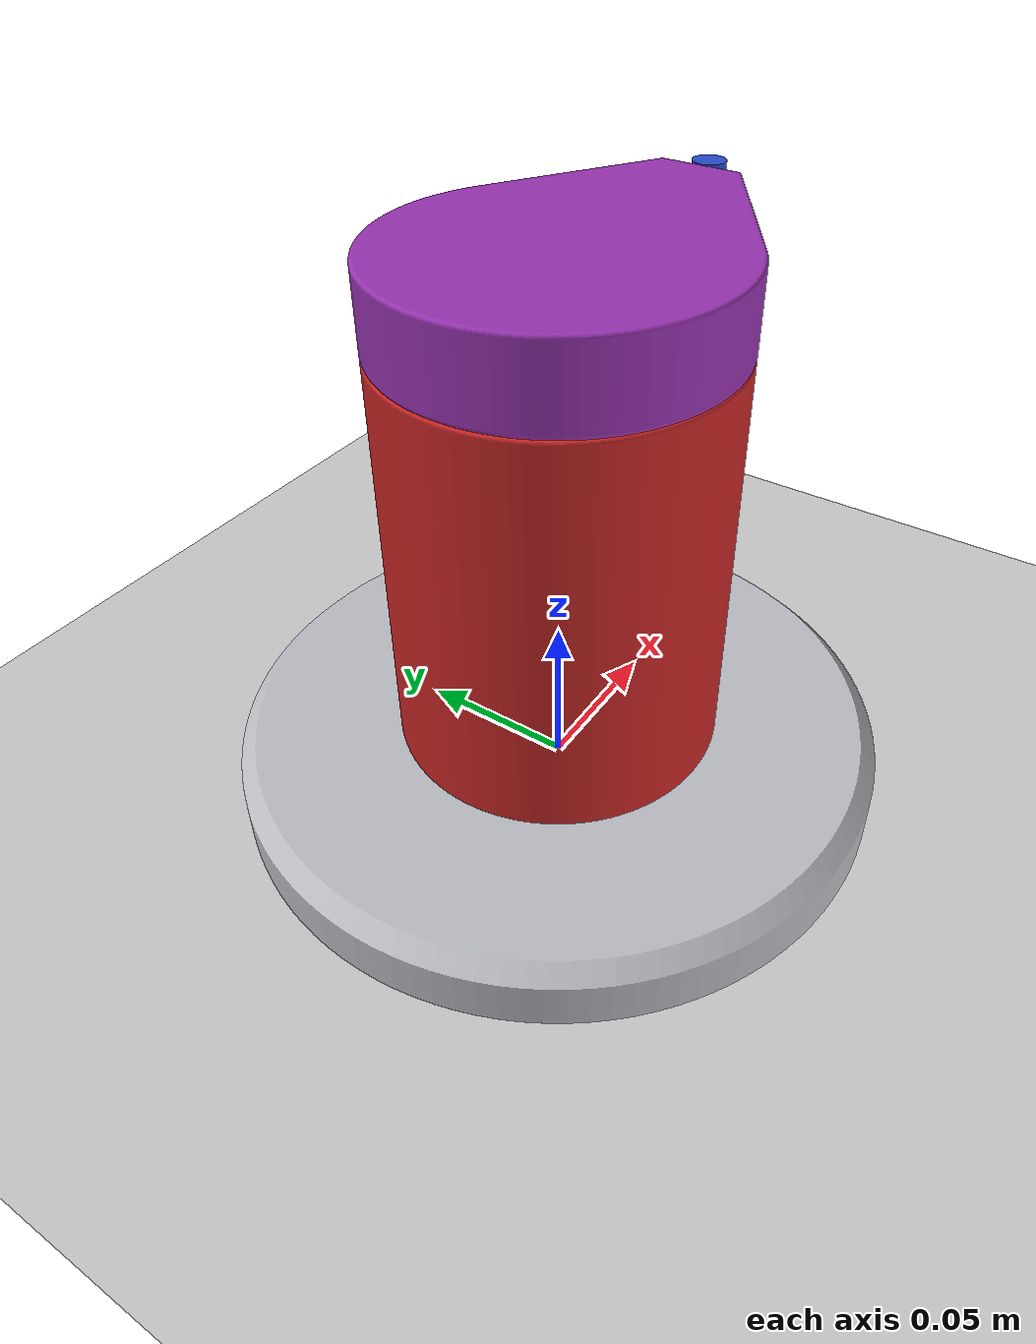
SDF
<sdf version="1.7">
 <world name="default">
  <light name="sun" type="directional">
   <pose>0 0 10 0 -0 0</pose>
   <diffuse>0.8 0.8 0.8 1</diffuse>
   <specular>0.2 0.2 0.2 1</specular>
   <attenuation>
    <range>1000</range>
    <constant>0.9</constant>
    <linear>0.01</linear>
    <quadratic>0.001</quadratic>
   </attenuation>
   <direction>-0.5 0.1 -0.9</direction>
   <spot><inner_angle>0</inner_angle><outer_angle>0</outer_angle><falloff>0</falloff></spot>
  </light>
  <model name="ground_plane">
   <static>1</static>
   <link name="link">
    <collision name="collision">
     <geometry><plane><normal>0 0 1</normal><size>100 100</size></plane></geometry>
     <surface><friction><ode><mu>100</mu><mu2>50</mu2></ode></friction></surface>
    </collision>
    <visual name="visual">
     <cast_shadows>0</cast_shadows>
     <geometry><plane><normal>0 0 1</normal><size>100 100</size></plane></geometry>
     <material>
      <script><uri>file://media/materials/scripts/gazebo.material</uri><name>Gazebo/Grey</name></script>
     </material>
    </visual>
   </link>
  </model>
  <gravity>0 0 -9.8</gravity>
  <magnetic_field>6e-06 2.3e-05 -4.2e-05</magnetic_field>
  <atmosphere type="adiabatic"/>
  <physics type="ode">
   <max_step_size>0.001</max_step_size>
   <real_time_factor>1</real_time_factor>
   <real_time_update_rate>1000</real_time_update_rate>
  </physics>
  <scene><ambient>0.4 0.4 0.4 1</ambient><background>0.7 0.7 0.7 1</background><shadows>1</shadows></scene>
  <audio><device>default</device></audio>
  <spherical_coordinates>
   <surface_model>EARTH_WGS84</surface_model>
   <latitude_deg>0</latitude_deg>
   <longitude_deg>0</longitude_deg>
   <elevation>0</elevation>
   <heading_deg>0</heading_deg>
  </spherical_coordinates>
  <model name="fura2a">
   <link name="base_link">
    <inertial>
     <pose>0 0 0.054376 0 -0 0</pose>
     <mass>12.5779</mass>
     <inertia>
      <ixx>0.0427787</ixx>
      <ixy>0</ixy>
      <ixz>-2.62711e-17</ixz>
      <iyy>0.0427787</iyy>
      <iyz>0</iyz>
      <izz>0.033707</izz>
     </inertia>
    </inertial>
    <collision name="base_link_collision">
     <geometry>
      <mesh>
       <scale>0.001 0.001 0.001</scale>
       <uri>file:///home/the-hassan-shahzad/ros2_ws/install/fura2a/share/fura2a/meshes/base_link.stl</uri>
      </mesh>
     </geometry>
     <surface><friction><ode><mu>0.95</mu><mu2>0.95</mu2></ode></friction></surface>
    </collision>
    <collision name="base_link_fixed_joint_lump__column_collision_1">
     <geometry>
      <mesh>
       <scale>0.001 0.001 0.001</scale>
       <uri>file:///home/the-hassan-shahzad/ros2_ws/install/fura2a/share/fura2a/meshes/column.stl</uri>
      </mesh>
     </geometry>
     <surface><friction><ode><mu>0.1</mu><mu2>0.1</mu2></ode></friction></surface>
    </collision>
    <visual name="base_link_visual">
     <geometry>
      <mesh>
       <scale>0.001 0.001 0.001</scale>
       <uri>file:///home/the-hassan-shahzad/ros2_ws/install/fura2a/share/fura2a/meshes/base_link.stl</uri>
      </mesh>
     </geometry>
     <material>
      <script><name>Gazebo/Silver</name><uri>file://media/materials/scripts/gazebo.material</uri></script>
     </material>
    </visual>
    <visual name="base_link_fixed_joint_lump__column_visual_1">
     <geometry>
      <mesh>
       <scale>0.001 0.001 0.001</scale>
       <uri>file:///home/the-hassan-shahzad/ros2_ws/install/fura2a/share/fura2a/meshes/column.stl</uri>
      </mesh>
     </geometry>
     <material>
      <script><name>Gazebo/CustomRed</name><uri>file://media/materials/scripts/gazebo.material</uri></script>
     </material>
    </visual>
    <self_collide>1</self_collide>
    <self_collide>1</self_collide>
   </link>
   <joint name="arm_joint" type="revolute">
    <pose relative_to="base_link">0 0 0.145 0 -0 0</pose>
    <parent>base_link</parent>
    <child>arm</child>
    <axis>
     <xyz>0 0 1</xyz>
     <limit><lower>-1e+16</lower><upper>1e+16</upper></limit>
     <dynamics><spring_reference>0</spring_reference><spring_stiffness>0</spring_stiffness></dynamics>
    </axis>
   </joint>
   <link name="arm">
    <pose relative_to="arm_joint">0 0 0 0 -0 0</pose>
    <inertial>
     <pose>0.007968 0 0.0125 0 -0 0</pose>
     <mass>1.78661</mass>
     <inertia>
      <ixx>0.001119</ixx>
      <ixy>0</ixy>
      <ixz>0</ixz>
      <iyy>0.001785</iyy>
      <iyz>0</iyz>
      <izz>0.002717</izz>
     </inertia>
    </inertial>
    <collision name="arm_collision">
     <pose>0 0 -0.145 0 -0 0</pose>
     <geometry>
      <mesh>
       <scale>0.001 0.001 0.001</scale>
       <uri>file:///home/the-hassan-shahzad/ros2_ws/install/fura2a/share/fura2a/meshes/arm.stl</uri>
      </mesh>
     </geometry>
     <surface><friction><ode><mu>0.1</mu><mu2>0.1</mu2></ode></friction></surface>
    </collision>
    <visual name="arm_visual">
     <pose>0 0 -0.145 0 -0 0</pose>
     <geometry>
      <mesh>
       <scale>0.001 0.001 0.001</scale>
       <uri>file:///home/the-hassan-shahzad/ros2_ws/install/fura2a/share/fura2a/meshes/arm.stl</uri>
      </mesh>
     </geometry>
     <material>
      <script><name>Gazebo/CustomPurple</name><uri>file://media/materials/scripts/gazebo.material</uri></script>
     </material>
    </visual>
    <self_collide>1</self_collide>
   </link>
   <joint name="pendulum_joint" type="revolute">
    <pose relative_to="arm">0.075 0 0.0125 -3.14159 0 0</pose>
    <parent>arm</parent>
    <child>pendulum</child>
    <axis>
     <xyz>1 0 0</xyz>
     <limit><lower>-1e+16</lower><upper>1e+16</upper></limit>
     <dynamics><spring_reference>0</spring_reference><spring_stiffness>0</spring_stiffness></dynamics>
    </axis>
   </joint>
   <link name="pendulum">
    <pose relative_to="pendulum_joint">0 0 0 0 -0 0</pose>
    <inertial>
     <pose>0.005 0 0.06 0 -0 0</pose>
     <mass>0.0893979</mass>
     <inertia><ixx>0.000157</ixx><ixy>0</ixy><ixz>0</ixz><iyy>0.000157</iyy><iyz>0</iyz><izz>1e-06</izz></inertia>
    </inertial>
    <collision name="pendulum_collision">
     <pose>-0.075 0 -0.1575 0 -0 0</pose>
     <geometry>
      <mesh>
       <scale>0.001 0.001 0.001</scale>
       <uri>file:///home/the-hassan-shahzad/ros2_ws/install/fura2a/share/fura2a/meshes/pendulum.stl</uri>
      </mesh>
     </geometry>
     <surface><friction><ode><mu>0.1</mu><mu2>0.1</mu2></ode></friction></surface>
    </collision>
    <visual name="pendulum_visual">
     <pose>-0.075 0 -0.1575 0 -0 0</pose>
     <geometry>
      <mesh>
       <scale>0.001 0.001 0.001</scale>
       <uri>file:///home/the-hassan-shahzad/ros2_ws/install/fura2a/share/fura2a/meshes/pendulum.stl</uri>
      </mesh>
     </geometry>
     <material>
      <script><name>Gazebo/CustomBlue</name><uri>file://media/materials/scripts/gazebo.material</uri></script>
     </material>
    </visual>
    <self_collide>1</self_collide>
   </link>
   <plugin name="gazebo_ros2_control" filename="libgazebo_ros2_control.so">
    <parameters>/home/the-hassan-shahzad/ros2_ws/install/fura2a/share/fura2a/config/controller.yaml</parameters>
   </plugin>
   <static>0</static>
   <plugin name="pendulum_disturbance" filename="libgazebo_ros_joint_effort.so">
    <joint_name>pendulum_joint</joint_name>
    <topic_name>/apply_joint_effort</topic_name>
   </plugin>
   <pose>-2e-06 -5e-06 -2e-06 2.2e-05 2e-05 2.3e-05</pose>
  </model>
 </world>
</sdf>
